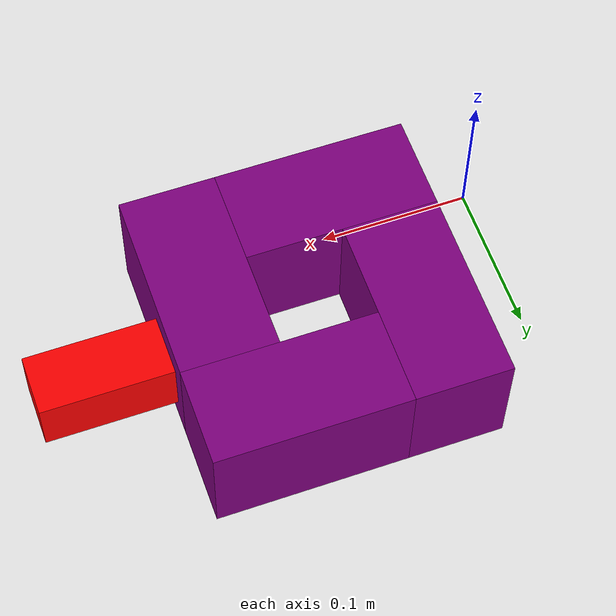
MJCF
<mujoco model="target_box">
    <worldbody>
        <body name="target_box" pos="0.0 0.0 0.0" quat="1 0 0 0">
        <geom name="handle_box" pos="0.265 0.064 0.02" size="0.05 0.02 0.02" rgba="1.0 0.0 0.0 1" friction="0.3 0.3 0.3" type="box" mass="0.01" />
        <geom name="target_box0" pos="0.1 0.0 0.02" size="0.064 0.032 0.04" rgba="0.5 0.0 0.5 1" type="box" mass="0.01" />
        <geom name="target_box1" pos="0.068 0.096 0.02" size="0.032 0.064 0.04" rgba="0.5 0.0 0.5 1" type="box" mass="0.01" />
        <geom name="target_box2" pos="0.196 0.032  0.02" size="0.032 0.064 0.04" rgba="0.5 0.0 0.5 1" type="box" mass="0.01" />
        <geom name="target_box3" pos="0.164 0.128 0.02" size="0.064 0.032 0.04" rgba="0.5 0.0 0.5 1" type="box" mass="0.01" />
        <joint name="target_box_joint" type="free"/>
        </body>
    </worldbody>
</mujoco>
